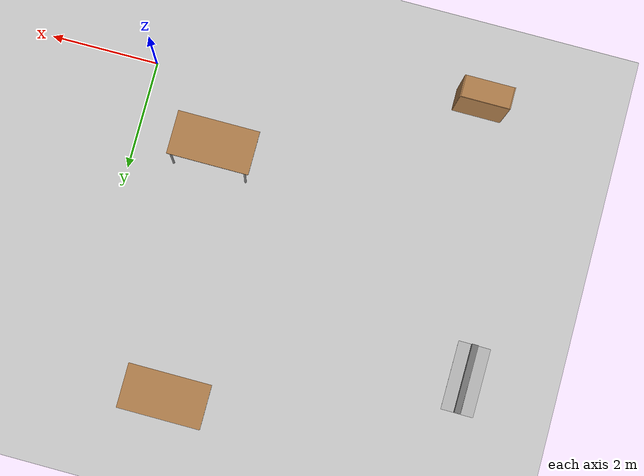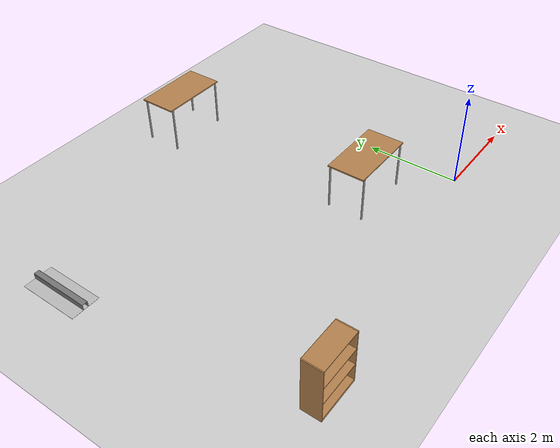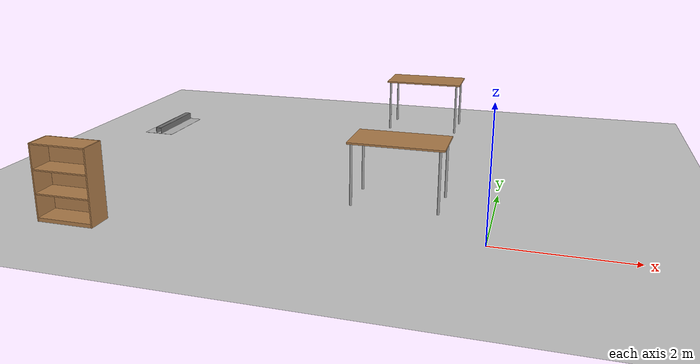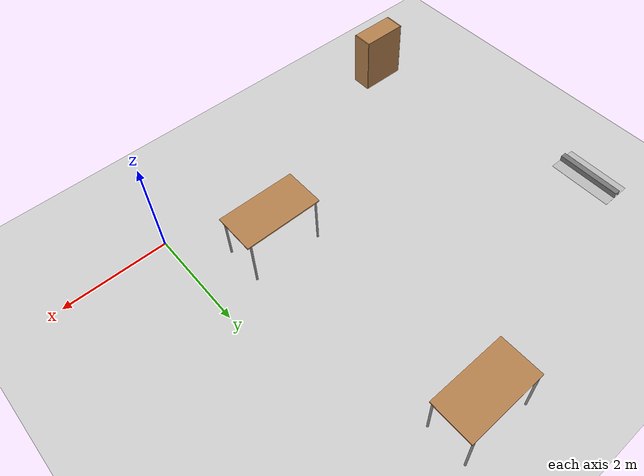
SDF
<sdf version="1.6">
 <world name="default">
  <model name="ground_plane">
   <static>1</static>
   <link name="link">
    <collision name="collision">
     <geometry><plane><normal>0 0 1</normal><size>100 100</size></plane></geometry>
     <surface>
      <contact><collide_bitmask>65535</collide_bitmask></contact>
      <friction><ode><mu>100</mu><mu2>50</mu2></ode></friction>
     </surface>
    </collision>
    <visual name="visual">
     <cast_shadows>0</cast_shadows>
     <geometry><plane><normal>0 0 1</normal><size>100 100</size></plane></geometry>
     <material>
      <script><uri>file://media/materials/scripts/gazebo.material</uri><name>Gazebo/Grey</name></script>
     </material>
    </visual>
   </link>
  </model>
  <model name="bookshelf">
   <static>1</static>
   <link name="link">
    <inertial><mass>1</mass></inertial>
    <collision name="back">
     <pose>0 0.005 0.6 0 -0 0</pose>
     <geometry><box><size>0.9 0.01 1.2</size></box></geometry>
    </collision>
    <visual name="visual1">
     <pose>0 0.005 0.6 0 -0 0</pose>
     <geometry><box><size>0.9 0.01 1.2</size></box></geometry>
     <material>
      <script><uri>file://media/materials/scripts/gazebo.material</uri><name>Gazebo/Wood</name></script>
     </material>
    </visual>
    <collision name="left_side">
     <pose>0.45 -0.195 0.6 0 -0 0</pose>
     <geometry><box><size>0.02 0.4 1.2</size></box></geometry>
    </collision>
    <visual name="visual2">
     <pose>0.45 -0.195 0.6 0 -0 0</pose>
     <geometry><box><size>0.02 0.4 1.2</size></box></geometry>
     <material>
      <script><uri>file://media/materials/scripts/gazebo.material</uri><name>Gazebo/Wood</name></script>
     </material>
    </visual>
    <collision name="right_side">
     <pose>-0.45 -0.195 0.6 0 -0 0</pose>
     <geometry><box><size>0.02 0.4 1.2</size></box></geometry>
    </collision>
    <visual name="visual3">
     <pose>-0.45 -0.195 0.6 0 -0 0</pose>
     <geometry><box><size>0.02 0.4 1.2</size></box></geometry>
     <material>
      <script><uri>file://media/materials/scripts/gazebo.material</uri><name>Gazebo/Wood</name></script>
     </material>
    </visual>
    <collision name="bottom">
     <pose>0 -0.195 0.03 0 -0 0</pose>
     <geometry><box><size>0.88 0.4 0.06</size></box></geometry>
    </collision>
    <visual name="visual4">
     <pose>0 -0.195 0.03 0 -0 0</pose>
     <geometry><box><size>0.88 0.4 0.06</size></box></geometry>
     <material>
      <script><uri>file://media/materials/scripts/gazebo.material</uri><name>Gazebo/Wood</name></script>
     </material>
    </visual>
    <collision name="top">
     <pose>0 -0.195 1.19 0 -0 0</pose>
     <geometry><box><size>0.88 0.4 0.02</size></box></geometry>
    </collision>
    <visual name="visual5">
     <pose>0 -0.195 1.19 0 -0 0</pose>
     <geometry><box><size>0.88 0.4 0.02</size></box></geometry>
     <material>
      <script><uri>file://media/materials/scripts/gazebo.material</uri><name>Gazebo/Wood</name></script>
     </material>
    </visual>
    <collision name="low_shelf">
     <pose>0 -0.195 0.43 0 -0 0</pose>
     <geometry><box><size>0.88 0.4 0.02</size></box></geometry>
    </collision>
    <visual name="visual6">
     <pose>0 -0.195 0.43 0 -0 0</pose>
     <geometry><box><size>0.88 0.4 0.02</size></box></geometry>
     <material>
      <script><uri>file://media/materials/scripts/gazebo.material</uri><name>Gazebo/Wood</name></script>
     </material>
    </visual>
    <collision name="high_shelf">
     <pose>0 -0.195 0.8 0 -0 0</pose>
     <geometry><box><size>0.88 0.4 0.02</size></box></geometry>
    </collision>
    <visual name="visual7">
     <pose>0 -0.195 0.8 0 -0 0</pose>
     <geometry><box><size>0.88 0.4 0.02</size></box></geometry>
     <material>
      <script><uri>file://media/materials/scripts/gazebo.material</uri><name>Gazebo/Wood</name></script>
     </material>
    </visual>
   </link>
   <pose>-5.92251 -0.596105 0 0 -0 0</pose>
  </model>
  <model name="table_2">
   <static>1</static>
   <link name="link">
    <collision name="surface">
     <pose>0 0 1 0 -0 0</pose>
     <geometry><box><size>1.5 0.8 0.03</size></box></geometry>
     <surface><friction><ode><mu>0.6</mu><mu2>0.6</mu2></ode></friction></surface>
    </collision>
    <visual name="visual1">
     <pose>0 0 1 0 -0 0</pose>
     <geometry><box><size>1.5 0.8 0.03</size></box></geometry>
     <material>
      <script><uri>file://media/materials/scripts/gazebo.material</uri><name>Gazebo/Wood</name></script>
     </material>
    </visual>
    <collision name="front_left_leg">
     <pose>0.68 0.38 0.5 0 -0 0</pose>
     <geometry><cylinder><radius>0.02</radius><length>1</length></cylinder></geometry>
    </collision>
    <visual name="front_left_leg">
     <pose>0.68 0.38 0.5 0 -0 0</pose>
     <geometry><cylinder><radius>0.02</radius><length>1</length></cylinder></geometry>
     <material>
      <script><uri>file://media/materials/scripts/gazebo.material</uri><name>Gazebo/Grey</name></script>
     </material>
    </visual>
    <collision name="front_right_leg">
     <pose>0.68 -0.38 0.5 0 -0 0</pose>
     <geometry><cylinder><radius>0.02</radius><length>1</length></cylinder></geometry>
    </collision>
    <visual name="front_right_leg">
     <pose>0.68 -0.38 0.5 0 -0 0</pose>
     <geometry><cylinder><radius>0.02</radius><length>1</length></cylinder></geometry>
     <material>
      <script><uri>file://media/materials/scripts/gazebo.material</uri><name>Gazebo/Grey</name></script>
     </material>
    </visual>
    <collision name="back_right_leg">
     <pose>-0.68 -0.38 0.5 0 -0 0</pose>
     <geometry><cylinder><radius>0.02</radius><length>1</length></cylinder></geometry>
    </collision>
    <visual name="back_right_leg">
     <pose>-0.68 -0.38 0.5 0 -0 0</pose>
     <geometry><cylinder><radius>0.02</radius><length>1</length></cylinder></geometry>
     <material>
      <script><uri>file://media/materials/scripts/gazebo.material</uri><name>Gazebo/Grey</name></script>
     </material>
    </visual>
    <collision name="back_left_leg">
     <pose>-0.68 0.38 0.5 0 -0 0</pose>
     <geometry><cylinder><radius>0.02</radius><length>1</length></cylinder></geometry>
    </collision>
    <visual name="back_left_leg">
     <pose>-0.68 0.38 0.5 0 -0 0</pose>
     <geometry><cylinder><radius>0.02</radius><length>1</length></cylinder></geometry>
     <material>
      <script><uri>file://media/materials/scripts/gazebo.material</uri><name>Gazebo/Grey</name></script>
     </material>
    </visual>
   </link>
   <pose>-1.47467 1.31804 0 0 -0 0</pose>
  </model>
  <model name="table_3">
   <static>1</static>
   <link name="link">
    <collision name="surface">
     <pose>0 0 1 0 -0 0</pose>
     <geometry><box><size>1.5 0.8 0.03</size></box></geometry>
     <surface><friction><ode><mu>0.6</mu><mu2>0.6</mu2></ode></friction></surface>
    </collision>
    <visual name="visual1">
     <pose>0 0 1 0 -0 0</pose>
     <geometry><box><size>1.5 0.8 0.03</size></box></geometry>
     <material>
      <script><uri>file://media/materials/scripts/gazebo.material</uri><name>Gazebo/Wood</name></script>
     </material>
    </visual>
    <collision name="front_left_leg">
     <pose>0.68 0.38 0.5 0 -0 0</pose>
     <geometry><cylinder><radius>0.02</radius><length>1</length></cylinder></geometry>
    </collision>
    <visual name="front_left_leg">
     <pose>0.68 0.38 0.5 0 -0 0</pose>
     <geometry><cylinder><radius>0.02</radius><length>1</length></cylinder></geometry>
     <material>
      <script><uri>file://media/materials/scripts/gazebo.material</uri><name>Gazebo/Grey</name></script>
     </material>
    </visual>
    <collision name="front_right_leg">
     <pose>0.68 -0.38 0.5 0 -0 0</pose>
     <geometry><cylinder><radius>0.02</radius><length>1</length></cylinder></geometry>
    </collision>
    <visual name="front_right_leg">
     <pose>0.68 -0.38 0.5 0 -0 0</pose>
     <geometry><cylinder><radius>0.02</radius><length>1</length></cylinder></geometry>
     <material>
      <script><uri>file://media/materials/scripts/gazebo.material</uri><name>Gazebo/Grey</name></script>
     </material>
    </visual>
    <collision name="back_right_leg">
     <pose>-0.68 -0.38 0.5 0 -0 0</pose>
     <geometry><cylinder><radius>0.02</radius><length>1</length></cylinder></geometry>
    </collision>
    <visual name="back_right_leg">
     <pose>-0.68 -0.38 0.5 0 -0 0</pose>
     <geometry><cylinder><radius>0.02</radius><length>1</length></cylinder></geometry>
     <material>
      <script><uri>file://media/materials/scripts/gazebo.material</uri><name>Gazebo/Grey</name></script>
     </material>
    </visual>
    <collision name="back_left_leg">
     <pose>-0.68 0.38 0.5 0 -0 0</pose>
     <geometry><cylinder><radius>0.02</radius><length>1</length></cylinder></geometry>
    </collision>
    <visual name="back_left_leg">
     <pose>-0.68 0.38 0.5 0 -0 0</pose>
     <geometry><cylinder><radius>0.02</radius><length>1</length></cylinder></geometry>
     <material>
      <script><uri>file://media/materials/scripts/gazebo.material</uri><name>Gazebo/Grey</name></script>
     </material>
    </visual>
   </link>
   <pose>-1.84142 5.83645 0 0 -0 0</pose>
  </model>
  <model name="frc2016_rockwall">
   <static>1</static>
   <link name="link">
    <inertial>
     <mass>10</mass>
     <pose>0 0 0.08974 0 -0 0</pose>
     <inertia><ixx>0.327091</ixx><ixy>0</ixy><ixz>0</ixz><iyy>1.37417</iyy><iyz>0</iyz><izz>1.64109</izz></inertia>
    </inertial>
    <visual name="platform">
     <pose>0 0 0.06432 0 -0 0</pose>
     <geometry><box><size>1.27 0.5969 0.003175</size></box></geometry>
    </visual>
    <collision name="platform">
     <pose>0 0 0.06432 0 -0 0</pose>
     <geometry><box><size>1.27 0.5969 0.003175</size></box></geometry>
    </collision>
    <visual name="up1">
     <pose>0 0.05166 0.12537 0 -0 0</pose>
     <geometry><box><size>1.27 0.00462 0.11892</size></box></geometry>
     <material><ambient>0.46 0.46 0.46 1</ambient><diffuse>0.46 0.46 0.46 1</diffuse></material>
    </visual>
    <collision name="up1">
     <pose>0 0.05166 0.12537 0 -0 0</pose>
     <geometry><box><size>1.27 0.00462 0.11892</size></box></geometry>
    </collision>
    <visual name="up2">
     <pose>0 -0.05801 0.12537 0 -0 0</pose>
     <geometry><box><size>1.27 0.00462 0.11892</size></box></geometry>
     <material><ambient>0.46 0.46 0.46 1</ambient><diffuse>0.46 0.46 0.46 1</diffuse></material>
    </visual>
    <collision name="up2">
     <pose>0 -0.05801 0.12537 0 -0 0</pose>
     <geometry><box><size>1.27 0.00462 0.11892</size></box></geometry>
    </collision>
    <visual name="top">
     <pose>0 -0.00249 0.18252 0 -0 0</pose>
     <geometry><box><size>1.27 0.1143 0.00462</size></box></geometry>
     <material><ambient>0.46 0.46 0.46 1</ambient><diffuse>0.46 0.46 0.46 1</diffuse></material>
    </visual>
    <collision name="top">
     <pose>0 -0.00249 0.18252 0 -0 0</pose>
     <geometry><box><size>1.27 0.1143 0.00462</size></box></geometry>
    </collision>
   </link>
   <pose>-6.91961 4.12792 0 0 -0 1.56145</pose>
  </model>
 </world>
</sdf>
